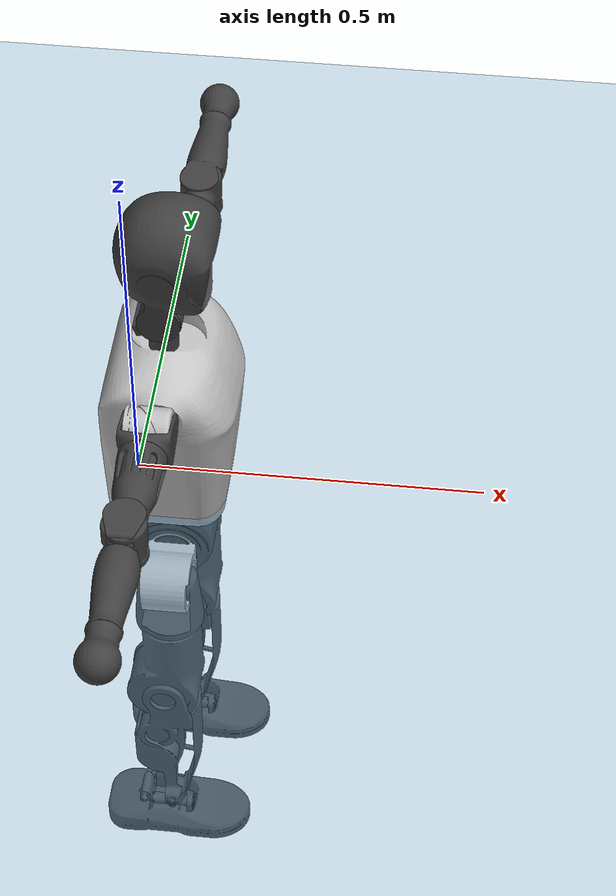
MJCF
<mujoco model="T1">
  <compiler angle="radian" assetdir="assets" balanceinertia="true" inertiafromgeom="false"/>

  <option timestep="0.005" density="1.2" viscosity="2e-05"/>

  <size nkey="1"/>

  <visual>
    <quality shadowsize="8192"/>
    <map shadowclip="0.5"/>
  </visual>

  <default>
    <default class="/">
      <joint armature="0.01" damping="0.01" frictionloss="0.1"/>
      <geom contype="0" conaffinity="0" group="1" solref="-1000 -80"/>
      <site size="0.01 0.005 0.005" group="5"/>
      <general forcelimited="true" biastype="affine" gainprm="25" biasprm="0 -25 -0.6"/>
      <default class="t1">
        <geom rgba="0.25 0.25 0.25 1"/>
        <default class="visual">
          <geom type="mesh" group="2"/>
        </default>
        <default class="collision">
          <geom group="3"/>
        </default>
        <default class="foot">
          <geom size="0.1115 0.05 0.015" type="box" condim="6" group="4" priority="1" solimp="0.015 1 0.015"/>
        </default>
        <default class="reward_collision_sphere">
          <geom group="5" rgba="1 0 0 1"/>
        </default>
      </default>
    </default>
  </default>

  <asset>
    <texture type="skybox" colorspace="auto" name="//unnamed_texture_0" builtin="gradient" rgb1="0.95 0.95 0.95" rgb2="0.95 0.95 0.95" width="100" height="600"/>
    <texture type="2d" colorspace="auto" name="texplane" builtin="checker" rgb1="0.345 0.575 0.748" rgb2="0.345 0.575 0.748" markrgb="1 1 1" width="512" height="512"/>
    <material name="MatPlane" class="/" texture="texplane" texuniform="true" texrepeat="2 2" specular="0.9"/>
    <mesh name="Trunk" class="/" file="Trunk.stl"/>
    <mesh name="H1" class="/" file="H1.stl"/>
    <mesh name="H2" class="/" file="H2.stl"/>
    <mesh name="AL1" class="/" file="AL1.stl"/>
    <mesh name="AL2" class="/" file="AL2.stl"/>
    <mesh name="AL3" class="/" file="AL3.stl"/>
    <mesh name="left_hand_link" class="/" file="left_hand_link.stl"/>
    <mesh name="AR1" class="/" file="AR1.stl"/>
    <mesh name="AR2" class="/" file="AR2.stl"/>
    <mesh name="AR3" class="/" file="AR3.stl"/>
    <mesh name="right_hand_link" class="/" file="right_hand_link.stl"/>
    <mesh name="Waist" class="/" file="Waist.stl"/>
    <mesh name="Hip_Pitch_Left" class="/" file="Hip_Pitch_Left.stl"/>
    <mesh name="Hip_Roll_Left" class="/" file="Hip_Roll_Left.stl"/>
    <mesh name="Hip_Yaw_Left" class="/" file="Hip_Yaw_Left.stl"/>
    <mesh name="Shank_Left" class="/" file="Shank_Left.stl"/>
    <mesh name="Ankle_Cross_Left" class="/" file="Ankle_Cross_Left.stl"/>
    <mesh name="left_foot_link" class="/" file="left_foot_link.stl"/>
    <mesh name="Hip_Pitch_Right" class="/" file="Hip_Pitch_Right.stl"/>
    <mesh name="Hip_Roll_Right" class="/" file="Hip_Roll_Right.stl"/>
    <mesh name="Hip_Yaw_Right" class="/" file="Hip_Yaw_Right.stl"/>
    <mesh name="Shank_Right" class="/" file="Shank_Right.stl"/>
    <mesh name="Ankle_Cross_Right" class="/" file="Ankle_Cross_Right.stl"/>
    <mesh name="right_foot_link" class="/" file="right_foot_link.stl"/>
  </asset>

  <worldbody>
    <geom name="floor" class="/" size="100 100 0.125" type="plane" group="0" material="MatPlane"/>
    <light name="toplight_shadow" class="/" pos="0 0 5" dir="0.0990148 0.0990148 -0.990148" type="directional" ambient="0.04 0.04 0.04" diffuse="0.55 0.55 0.55" specular="0.12 0.12 0.12"/>
    <light name="toplight_fill" class="/" pos="0 0 5" dir="0.0990148 0.0990148 -0.990148" type="directional" castshadow="false" ambient="0.04 0.04 0.04" diffuse="0.3 0.3 0.3" specular="0.08 0.08 0.08"/>
    <body name="trunk" childclass="t1" pos="-8.1873e-05 0.000193259 0.000319071" quat="1 -1.75937e-06 -1.50662e-06 1.20277e-07">
      <inertial pos="0.0450284 -0.000589354 0.10955" quat="0.999962 -0.00387592 -0.00747173 -0.0021027" mass="9.34647" diaginertia="0.0349212 0.0487038 0.0670813"/>
      <joint name="//unnamed_joint_0" type="free" armature="0" damping="0" frictionloss="0"/>
      <geom name="//unnamed_geom_1" class="visual" rgba="0.76 0.76 0.76 1" mesh="Trunk"/>
      <geom name="//unnamed_geom_2" class="collision" size="0.0692567 0.0923423 0.138513" pos="0.0493717 0 0.124178" type="box"/>
      <geom name="//unnamed_geom_3" class="reward_collision_sphere" size="0.106194" pos="0.0493717 0 0.103482"/>
      <geom name="//unnamed_geom_4" class="reward_collision_sphere" size="0.0138513" pos="0.0493717 0.0775704 0"/>
      <geom name="//unnamed_geom_5" class="reward_collision_sphere" size="0.0138513" pos="0.0493717 -0.0775704 0"/>
      <geom name="//unnamed_geom_6" class="reward_collision_sphere" size="0.0138513" pos="0.0493717 0.0976474 0.186267"/>
      <geom name="//unnamed_geom_7" class="reward_collision_sphere" size="0.0138513" pos="0.0493717 -0.0976474 0.186267"/>
      <site name="imu" pos="-0.00873077 0.00488514 0.00171342" size="0.00923423"/>
      <camera name="track" pos="0 -1.82519 0" quat="0.707107 0.707107 0 0" mode="trackcom"/>
      <camera name="ego_camera" pos="0.100389 0 0.434623" quat="-0.5 -0.5 0.5 0.5"/>
      <body name="H1" pos="0.0487115 -0.00217626 0.249063" quat="1 0.00017358 0.000154917 0.000344699">
        <inertial pos="-0.00106535 -0.00107156 0.0603063" quat="0.763491 -0.0135138 -0.00727696 0.645636" mass="0.354272" diaginertia="9.14624e-05 0.000138469 0.000179311"/>
        <joint name="AAHead_yaw" pos="0 0 0" axis="-0.00820938 -0.000611003 0.999966" range="-1.57325 1.55306" armature="0.00979236" damping="0.0108658" frictionloss="0.0894141"/>
        <geom name="//unnamed_geom_8" class="visual" mesh="H1"/>
        <body name="H2" pos="-0.000926641 6.02233e-05 0.0640488" quat="1 -0.000228669 -0.000245996 -0.000125126">
          <inertial pos="0.00600891 -0.00127132 0.102294" quat="0.988596 0.105098 -0.0743088 -0.0781709" mass="0.506778" diaginertia="0.000784828 0.00122463 0.00204544"/>
          <joint name="Head_pitch" pos="0 0 0" axis="0.000361434 -1 -0.00045783" range="-1.2347 0.35097" armature="0.00923016" damping="0.00836526" frictionloss="0.0922232"/>
          <geom name="//unnamed_geom_9" class="visual" mesh="H2"/>
          <geom name="//unnamed_geom_10" class="collision" size="0.0738739" pos="0.00822861 0 0.11383"/>
          <geom name="//unnamed_geom_11" class="reward_collision_sphere" size="0.0831081" pos="0.0164572 0 0.103482"/>
        </body>
      </body>
      <body name="AL1" pos="0.0473777 0.09964 0.22624" quat="1 -7.3817e-06 0.000555912 -7.2162e-05">
        <inertial pos="-0.0025772 0.0425613 -0.000696214" quat="0.505592 0.494938 -0.502338 0.497061" mass="0.409817" diaginertia="0.000509059 0.000806565 0.000345619"/>
        <joint name="Left_Shoulder_Pitch" pos="0 0 0" axis="-0.0018957 0.999998 -0.000424262" stiffness="0.00317072" range="-3.32643 1.22475" armature="0.00918272" damping="0.00621296" frictionloss="0.0919038"/>
        <geom name="//unnamed_geom_12" class="visual" rgba="0.76 0.76 0.76 1" mesh="AL1"/>
        <body name="AL2" pos="0.000261998 0.0451144 -0.000124995" quat="1 -0.000191469 0.000238071 0.00039909">
          <inertial pos="0.00283783 0.0351811 -0.00101204" quat="0.48802 0.511518 -0.488012 0.511888" mass="0.127555" diaginertia="0.000155696 0.000228817 0.000214722"/>
          <joint name="Left_Shoulder_Roll" pos="0 0 0" axis="-0.999998 0.00152058 0.000894792" range="-1.57361 1.71429" armature="0.00918174" damping="0.0164118" frictionloss="0.0899672"/>
          <geom name="//unnamed_geom_13" class="visual" mesh="AL2"/>
          <body name="AL3" pos="0.00258496 0.0556956 0.00138318" quat="1 5.73305e-05 3.28105e-05 2.24872e-05">
            <inertial pos="-0.000614292 0.0774861 0.000490783" quat="0.703984 0.710214 0.00138987 -0.000921366" mass="0.794197" diaginertia="0.00486798 0.00802072 0.000730014"/>
            <joint name="Left_Elbow_Pitch" pos="0 0 0" axis="0.00219264 -0.999997 -0.000849602" range="-2.28414 2.28799" armature="0.00872538" damping="0.0101613" frictionloss="0.0935367"/>
            <geom name="//unnamed_geom_14" class="visual" mesh="AL3"/>
            <geom name="//unnamed_geom_15" class="collision" size="0.0277027 0.0692567" pos="0 0.0456296 0" quat="0.707105 0.707108 0 0" type="cylinder"/>
            <geom name="//unnamed_geom_16" class="reward_collision_sphere" size="0.0332432"/>
            <body name="left_hand_link" pos="-0.000751462 0.134693 0.000703048" quat="1 -0.000227925 0.000195021 -3.84059e-05">
              <inertial pos="0.00202508 0.0990716 0.000129007" quat="0.705125 0.709077 -0.00144372 0.00255586" mass="0.256104" diaginertia="0.00305322 0.00510953 0.000248605"/>
              <joint name="Left_Elbow_Yaw" pos="0 0 0" axis="0.00372527 0.00146354 0.999992" range="-2.45992 0.00961143" armature="0.00949779" damping="0.0126672" frictionloss="0.0955387"/>
              <geom name="//unnamed_geom_17" class="visual" mesh="left_hand_link"/>
              <geom name="//unnamed_geom_18" class="collision" size="0.0277027 0.0807995" pos="0 0.118637 0" quat="0.707105 0.707108 0 0" type="cylinder"/>
              <geom name="//unnamed_geom_19" class="reward_collision_sphere" size="0.0461712"/>
              <geom name="//unnamed_geom_20" class="reward_collision_sphere" size="0.0323198" pos="0 0.100385 0"/>
              <geom name="//unnamed_geom_21" class="reward_collision_sphere" size="0.0323198" pos="0 0.196207 0"/>
            </body>
          </body>
        </body>
      </body>
      <body name="AR1" pos="0.0480528 -0.0974272 0.226958" quat="1 7.40091e-05 0.000453122 0.000124513">
        <inertial pos="-0.00183803 -0.0419606 -0.000183233" quat="0.504153 0.495345 -0.504654 0.49577" mass="0.413439" diaginertia="0.000520485 0.000816051 0.000346126"/>
        <joint name="Right_Shoulder_Pitch" pos="0 0 0" axis="-1.68605e-05 -1 -0.000396529" stiffness="0.0045352" range="-1.21933 3.29187" armature="0.0092467" damping="0" frictionloss="0.0946172"/>
        <geom name="//unnamed_geom_22" class="visual" rgba="0.76 0.76 0.76 1" mesh="AR1"/>
        <body name="AR2" pos="0.000357535 -0.0432761 -0.00141801" quat="1 7.86874e-05 5.65219e-05 -2.26448e-06">
          <inertial pos="0.0035806 -0.0340555 -0.00143946" quat="0.511017 0.488668 -0.510069 0.489791" mass="0.12544" diaginertia="0.000151347 0.000213407 0.000206951"/>
          <joint name="Right_Shoulder_Roll" pos="0 0 0" axis="-0.999977 0.00155104 -0.00662913" range="-1.69956 1.56432" armature="0.00884695" damping="0.0170433" frictionloss="0.0918724"/>
          <geom name="//unnamed_geom_23" class="visual" mesh="AR2"/>
          <body name="AR3" pos="-5.01252e-05 -0.0556415 -0.000920111" quat="1 5.40293e-05 -3.57031e-05 -0.000177073">
            <inertial pos="-0.00207496 -0.0788701 0.000242917" quat="0.70904 0.705162 -0.00140895 0.00250703" mass="0.804689" diaginertia="0.00486612 0.00811123 0.000755283"/>
            <joint name="Right_Elbow_Pitch" pos="0 0 0" axis="-0.00332456 0.999991 0.00255693" range="-2.27292 2.27085" armature="0.00918275" damping="0.0127777" frictionloss="0.0845491"/>
            <geom name="//unnamed_geom_24" class="visual" mesh="AR3"/>
            <geom name="//unnamed_geom_25" class="collision" size="0.0277027 0.0692567" pos="0 -0.0456296 0" quat="0.707105 0.707108 0 0" type="cylinder"/>
            <geom name="//unnamed_geom_26" class="reward_collision_sphere" size="0.0332432"/>
            <body name="right_hand_link" pos="-0.000947595 -0.134539 -0.000254044" quat="1 -6.78213e-05 0.000103377 -4.93004e-05">
              <inertial pos="2.76469e-05 -0.0999356 0.00217419" quat="0.706461 0.707752 0.000146915 0.000252848" mass="0.257498" diaginertia="0.00305153 0.00503442 0.000256833"/>
              <joint name="Right_Elbow_Yaw" pos="0 0 0" axis="-0.00299749 -0.00259058 0.999992" range="-0.0110083 2.45734" armature="0.00936252" damping="0.0119458" frictionloss="0.0855393"/>
              <geom name="//unnamed_geom_27" class="visual" mesh="right_hand_link"/>
              <geom name="//unnamed_geom_28" class="collision" size="0.0277027 0.0807995" pos="0 -0.118637 0" quat="0.707105 0.707108 0 0" type="cylinder"/>
              <geom name="//unnamed_geom_29" class="reward_collision_sphere" size="0.0461712"/>
              <geom name="//unnamed_geom_30" class="reward_collision_sphere" size="0.0323198" pos="0 -0.100385 0"/>
              <geom name="//unnamed_geom_31" class="reward_collision_sphere" size="0.0323198" pos="0 -0.196207 0"/>
            </body>
          </body>
        </body>
      </body>
      <body name="Waist" pos="0.0522225 -5.29012e-06 -0.120141" quat="1 4.04888e-06 -0.000191065 6.24826e-06">
        <inertial pos="0.00113122 -0.000557287 0.00756411" quat="0.983203 -0.000775923 -0.182483 0.00322461" mass="2.02536" diaginertia="0.00207661 0.00333843 0.00577331"/>
        <joint name="Waist" pos="0 0 0" axis="-0.00325743 0.00131373 0.999994" range="-1.56385 1.58014" armature="0.00918035" damping="0.0107405" frictionloss="0.0856978"/>
        <geom name="//unnamed_geom_32" class="visual" mesh="Waist"/>
        <body name="Hip_Pitch_Left" pos="0.000124766 0.0963896 0.000807487" quat="1 0.000413819 0.000143536 0.000359053">
          <inertial pos="0.000174584 -0.00778746 -0.0197298" quat="0.975994 0.217367 0.0136249 0.00102279" mass="0.802095" diaginertia="0.000681159 0.000927364 0.00150936"/>
          <joint name="Left_Hip_Pitch" pos="0 0 0" axis="-0.00040459 0.999995 -0.00314599" range="-1.782 1.56866" armature="0.00927263" damping="0.0154069" frictionloss="0.0918827"/>
          <geom name="//unnamed_geom_33" class="visual" rgba="0.76 0.76 0.76 1" mesh="Hip_Pitch_Left"/>
          <body name="Hip_Roll_Left" pos="0.00181149 0.000845783 -0.0205641" quat="1 9.64574e-05 0.000287121 -0.000949827">
            <inertial pos="0.000991699 0.000441425 -0.0557366" quat="0.707077 -0.00600025 -0.00600406 0.707085" mass="0.293011" diaginertia="0.000625159 0.000937999 0.000597277"/>
            <joint name="Left_Hip_Roll" pos="0 0 0" axis="-0.999967 0.00811797 -0.000451678" range="-1.5329 0.191007" armature="0.00945137" damping="0.0083214" frictionloss="0.0969246"/>
            <geom name="//unnamed_geom_34" class="visual" mesh="Hip_Roll_Left"/>
            <geom name="//unnamed_geom_35" class="reward_collision_sphere" size="0.0507883"/>
            <body name="Hip_Yaw_Left" pos="0.000383153 0.000508772 -0.0859934" quat="1 -0.000730778 -0.00012858 0.000138761">
              <inertial pos="-0.00726419 0.000649447 -0.0915536" quat="0.697615 -0.0364328 -0.0309067 0.714878" mass="1.70371" diaginertia="0.00990134 0.0159689 0.00308718"/>
              <joint name="Left_Hip_Yaw" pos="0 0 0" axis="-0.00137255 -0.00117162 -0.999998" range="-0.966823 1.03221" armature="0.00915575" damping="0.00925853" frictionloss="0.096406"/>
              <geom name="//unnamed_geom_36" class="visual" mesh="Hip_Yaw_Left"/>
              <geom name="//unnamed_geom_37" class="collision" size="0.0461712 0.0738739" type="cylinder"/>
              <body name="Shank_Left" pos="-0.0109088 0.000986827 -0.138099" quat="1 9.86884e-05 5.28043e-05 2.22612e-05">
                <inertial pos="-0.0068291 -0.000138264 -0.129592" quat="0.997751 -0.00267733 -0.0307789 0.0594849" mass="1.36593" diaginertia="0.013078 0.0224093 0.00220154"/>
                <joint name="Left_Knee_Pitch" pos="0 0 0" axis="-0.00078991 0.999999 0.00123758" stiffness="0.00148281" range="-0.00889441 2.3495" armature="0.00913999" damping="0.00906125" frictionloss="0.100645"/>
                <geom name="//unnamed_geom_38" class="visual" mesh="Shank_Left"/>
                <geom name="//unnamed_geom_39" class="collision" size="0.0461712 0.0692567" pos="0 0 -0.124178" type="cylinder"/>
                <geom name="//unnamed_geom_40" class="reward_collision_sphere" size="0.0600225"/>
                <body name="Ankle_Cross_Left" pos="0.00159528 0.000559867 -0.290907" quat="1 0.000102864 -8.59863e-05 -4.06003e-05">
                  <inertial pos="-0.00287608 -0.000105606 -0.0088026" quat="0.441857 0.551174 0.550184 0.445273" mass="0.0570864" diaginertia="1.07334e-05 1.61517e-05 1.33209e-05"/>
                  <joint name="Left_Ankle_Pitch" pos="0 0 0" axis="-0.000690614 1 0.000693129" range="-0.868279 0.348073" armature="0.0101122" damping="0.0146585" frictionloss="0.0965937"/>
                  <geom name="//unnamed_geom_41" class="visual" mesh="Ankle_Cross_Left"/>
                  <body name="left_foot_link" pos="0.00132599 0.000916111 -0.0116826" quat="1 2.93745e-05 -4.62152e-05 -4.70219e-05">
                    <inertial pos="-0.00187162 0.000230277 -0.0093667" quat="-0.000598369 0.619656 -0.000825912 0.784873" mass="0.543442" diaginertia="0.00102502 0.00150971 0.00257714"/>
                    <joint name="Left_Ankle_Roll" pos="0 0 0" axis="-1 7.24316e-05 -0.000883005" range="-0.453467 0.456687" armature="0.00912532" damping="0.000492061" frictionloss="0.0909603"/>
                    <geom name="//unnamed_geom_42" class="visual" mesh="left_foot_link"/>
                    <geom name="left_foot" class="foot" size="0.101444 0.0447465 0.0145836" pos="0.00822861 0 -0.0155222"/>
                    <geom name="//unnamed_geom_44" class="reward_collision_sphere" size="0.048018" pos="0.00822861 0 -0.0155222"/>
                    <geom name="//unnamed_geom_45" class="reward_collision_sphere" size="0.0277027" pos="0.0781718 -0.0209896 -0.0155222"/>
                    <geom name="//unnamed_geom_46" class="reward_collision_sphere" size="0.0277027" pos="-0.0576003 -0.0209896 -0.0155222"/>
                    <site name="left_foot" class="foot" pos="0.00822861 0 -0.0155222" size="0.00923423"/>
                  </body>
                </body>
              </body>
            </body>
          </body>
        </body>
        <body name="Hip_Pitch_Right" pos="0.000189288 -0.0968152 0.000414029" quat="1 7.02284e-07 -3.96898e-06 6.80348e-08">
          <inertial pos="7.0002e-05 0.00685185 -0.0195992" quat="0.972813 -0.231052 0.0157611 -0.00136658" mass="0.809146" diaginertia="0.000665616 0.000944813 0.00146671"/>
          <joint name="Right_Hip_Pitch" pos="0 0 0" axis="0.0050363 -0.999983 0.0030836" range="-1.61553 1.83676" armature="0.00934801" damping="0.0129054" frictionloss="0.0846742"/>
          <geom name="//unnamed_geom_47" class="visual" rgba="0.76 0.76 0.76 1" mesh="Hip_Pitch_Right"/>
          <body name="Hip_Roll_Right" pos="0.00202995 0.00021048 -0.0213282" quat="1 -0.000147539 -3.80948e-05 -0.000293463">
            <inertial pos="0.00185198 -0.000859318 -0.0547893" quat="0.704942 -0.00400223 -0.00398422 0.709242" mass="0.300596" diaginertia="0.000649529 0.000963172 0.000616415"/>
            <joint name="Right_Hip_Roll" pos="0 0 0" axis="-0.999924 0.0121457 0.00221212" stiffness="0.00426746" range="-0.199754 1.58256" armature="0.00934129" damping="0.00960352" frictionloss="0.0916705"/>
            <geom name="//unnamed_geom_48" class="visual" mesh="Hip_Roll_Right"/>
            <geom name="//unnamed_geom_49" class="reward_collision_sphere" size="0.0507883"/>
            <body name="Hip_Yaw_Right" pos="-0.000698588 -0.00103342 -0.0860504" quat="1 7.50062e-05 0.000226725 -0.000132017">
              <inertial pos="-0.00616788 0.00109264 -0.0921123" quat="0.716518 -0.0368984 -0.0248964 0.696147" mass="1.70969" diaginertia="0.00976543 0.0162001 0.0031009"/>
              <joint name="Right_Hip_Yaw" pos="0 0 0" axis="0.00223297 0.000667686 -0.999997" range="-0.986017 0.992154" armature="0.00926516" damping="0.0136036" frictionloss="0.0926608"/>
              <geom name="//unnamed_geom_50" class="visual" mesh="Hip_Yaw_Right"/>
              <geom name="//unnamed_geom_51" class="collision" size="0.0461712 0.0738739" type="cylinder"/>
              <body name="Shank_Right" pos="-0.0119191 -0.00229375 -0.13853" quat="1 0.000109707 9.34415e-05 -2.45678e-05">
                <inertial pos="-0.00696883 0.00198673 -0.126114" quat="0.999133 -0.00248996 -0.0264877 -0.032028" mass="1.42807" diaginertia="0.0131326 0.0220861 0.00236232"/>
                <joint name="Right_Knee_Pitch" pos="0 0 0" axis="0.0012555 -0.999998 -0.00125423" range="-2.32861 -0.00327247" armature="0.00918158" damping="0.002481" frictionloss="0.0965805"/>
                <geom name="//unnamed_geom_52" class="visual" mesh="Shank_Right"/>
                <geom name="//unnamed_geom_53" class="collision" size="0.0461712 0.0692567" pos="0 0 -0.124178" type="cylinder"/>
                <geom name="//unnamed_geom_54" class="reward_collision_sphere" size="0.0600225"/>
                <body name="Ankle_Cross_Right" pos="-0.000600052 -0.000399467 -0.290732" quat="1 0.00015415 0.000198893 6.71014e-05">
                  <inertial pos="-0.00232227 -0.000618795 -0.00896618" quat="0.437402 0.549632 0.551568 0.449841" mass="0.0578354" diaginertia="1.09834e-05 1.55689e-05 1.32355e-05"/>
                  <joint name="Right_Ankle_Pitch" pos="0 0 0" axis="-0.000173293 -0.999999 0.000992218" range="-0.36742 0.867696" armature="0.00924841" damping="0" frictionloss="0.0928955"/>
                  <geom name="//unnamed_geom_55" class="visual" mesh="Ankle_Cross_Right"/>
                  <body name="right_foot_link" pos="-0.00146256 -0.000918348 -0.0108721" quat="1 -2.65243e-05 -3.25162e-05 2.02402e-05">
                    <inertial pos="0.000404102 -0.000844015 -0.00809135" quat="-0.000959175 0.621898 0.000632325 0.783097" mass="0.541596" diaginertia="0.00103321 0.00149313 0.00259243"/>
                    <joint name="Right_Ankle_Roll" pos="0 0 0" axis="-1 -2.05935e-06 -4.08364e-05" range="-0.437604 0.44292" armature="0.00908872" damping="0.00678956" frictionloss="0.0925192"/>
                    <geom name="//unnamed_geom_56" class="visual" mesh="right_foot_link"/>
                    <geom name="right_foot" class="foot" size="0.097729 0.0430197 0.0135195" pos="0.00822861 0 -0.0155222"/>
                    <geom name="//unnamed_geom_58" class="reward_collision_sphere" size="0.0369369"/>
                    <geom name="//unnamed_geom_59" class="reward_collision_sphere" size="0.0277027" pos="0.00822861 0 -0.0155222"/>
                    <geom name="//unnamed_geom_60" class="reward_collision_sphere" size="0.0277027" pos="0.0781718 0.0209896 -0.0155222"/>
                    <geom name="//unnamed_geom_61" class="reward_collision_sphere" size="0.0277027" pos="-0.0576003 0.0209896 -0.0155222"/>
                    <site name="right_foot" class="foot" pos="0.00822861 0 -0.0155222" size="0.00923423"/>
                  </body>
                </body>
              </body>
            </body>
          </body>
        </body>
      </body>
    </body>
  </worldbody>

  <contact>
    <pair class="/" geom1="floor" geom2="left_foot" name="//unnamed_contact_0"/>
    <pair class="/" geom1="floor" geom2="right_foot" name="//unnamed_contact_1"/>
  </contact>

  <actuator>
    <general name="AAHead_yaw" class="/" joint="AAHead_yaw" forcerange="-6.50255 6.50255" gainprm="22.0419" biasprm="0 -22.0419 -0.531963"/>
    <general name="Head_pitch" class="/" joint="Head_pitch" forcerange="-6.42936 6.42936" gainprm="22.0419" biasprm="0 -22.0419 -0.531963"/>
    <general name="Left_Shoulder_Pitch" class="/" joint="Left_Shoulder_Pitch" forcerange="-16.8509 16.8509" gainprm="22.0419" biasprm="0 -22.0419 -0.531963"/>
    <general name="Left_Shoulder_Roll" class="/" joint="Left_Shoulder_Roll" forcerange="-16.4468 16.4468" gainprm="22.0419" biasprm="0 -22.0419 -0.531963"/>
    <general name="Left_Elbow_Pitch" class="/" joint="Left_Elbow_Pitch" forcerange="-16.9338 16.9338" gainprm="22.0419" biasprm="0 -22.0419 -0.531963"/>
    <general name="Left_Elbow_Yaw" class="/" joint="Left_Elbow_Yaw" forcerange="-16.4214 16.4214" gainprm="22.0419" biasprm="0 -22.0419 -0.531963"/>
    <general name="Right_Shoulder_Pitch" class="/" joint="Right_Shoulder_Pitch" forcerange="-17.3347 17.3347" gainprm="22.0419" biasprm="0 -22.0419 -0.531963"/>
    <general name="Right_Shoulder_Roll" class="/" joint="Right_Shoulder_Roll" forcerange="-16.9345 16.9345" gainprm="22.0419" biasprm="0 -22.0419 -0.531963"/>
    <general name="Right_Elbow_Pitch" class="/" joint="Right_Elbow_Pitch" forcerange="-16.7013 16.7013" gainprm="22.0419" biasprm="0 -22.0419 -0.531963"/>
    <general name="Right_Elbow_Yaw" class="/" joint="Right_Elbow_Yaw" forcerange="-16.2476 16.2476" gainprm="22.0419" biasprm="0 -22.0419 -0.531963"/>
    <general name="Waist" class="/" joint="Waist" forcerange="-27.6189 27.6189" gainprm="22.0419" biasprm="0 -22.0419 -0.531963"/>
    <general name="Left_Hip_Pitch" class="/" joint="Left_Hip_Pitch" forcerange="-41.6409 41.6409" gainprm="22.0419" biasprm="0 -22.0419 -0.531963"/>
    <general name="Left_Hip_Roll" class="/" joint="Left_Hip_Roll" forcerange="-27.7343 27.7343" gainprm="22.0419" biasprm="0 -22.0419 -0.531963"/>
    <general name="Left_Hip_Yaw" class="/" joint="Left_Hip_Yaw" forcerange="-27.302 27.302" gainprm="22.0419" biasprm="0 -22.0419 -0.531963"/>
    <general name="Left_Knee_Pitch" class="/" joint="Left_Knee_Pitch" forcerange="-53.1524 53.1524" gainprm="22.0419" biasprm="0 -22.0419 -0.531963"/>
    <general name="Left_Ankle_Pitch" class="/" joint="Left_Ankle_Pitch" forcerange="-18.9668 18.9668" gainprm="22.0419" biasprm="0 -22.0419 -0.531963"/>
    <general name="Left_Ankle_Roll" class="/" joint="Left_Ankle_Roll" forcerange="-13.7992 13.7992" gainprm="22.0419" biasprm="0 -22.0419 -0.531963"/>
    <general name="Right_Hip_Pitch" class="/" joint="Right_Hip_Pitch" forcerange="-40.7951 40.7951" gainprm="22.0419" biasprm="0 -22.0419 -0.531963"/>
    <general name="Right_Hip_Roll" class="/" joint="Right_Hip_Roll" forcerange="-27.4635 27.4635" gainprm="22.0419" biasprm="0 -22.0419 -0.531963"/>
    <general name="Right_Hip_Yaw" class="/" joint="Right_Hip_Yaw" forcerange="-28.7121 28.7121" gainprm="22.0419" biasprm="0 -22.0419 -0.531963"/>
    <general name="Right_Knee_Pitch" class="/" joint="Right_Knee_Pitch" forcerange="-54.0467 54.0467" gainprm="22.0419" biasprm="0 -22.0419 -0.531963"/>
    <general name="Right_Ankle_Pitch" class="/" joint="Right_Ankle_Pitch" forcerange="-17.6143 17.6143" gainprm="22.0419" biasprm="0 -22.0419 -0.531963"/>
    <general name="Right_Ankle_Roll" class="/" joint="Right_Ankle_Roll" forcerange="-13.3705 13.3705" gainprm="22.0419" biasprm="0 -22.0419 -0.531963"/>
  </actuator>

  <sensor>
    <gyro site="imu" name="imu_angular_velocity"/>
    <velocimeter site="imu" name="imu_linear_velocity"/>
    <framelinvel objtype="site" objname="left_foot" name="left_foot_global_linear_velocity"/>
    <framelinvel objtype="site" objname="right_foot" name="right_foot_global_linear_velocity"/>
  </sensor>

  <keyframe>
    <key name="home" qpos="0 0 0.6385 1 0 0 0 0 0 0 1.4 0 -0.4 0 -1.4 0 0.4 0 -0.4 0 0 0.8 -0.4 0 0.4 0 0 -0.8 0.4 0"/>
  </keyframe>
</mujoco>
